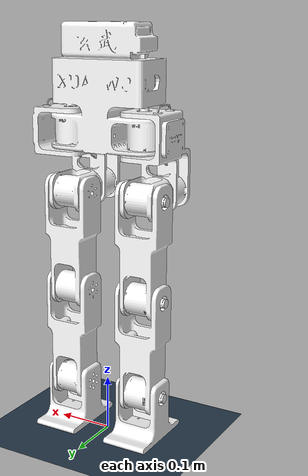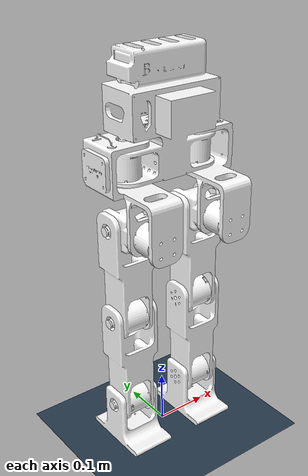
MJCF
<mujoco model="Xuanwu">
  <option>
    <flag multiccd="enable"/>
  </option>
  <compiler angle="radian" meshdir="../meshes/" eulerseq="zyx"/>
  <size njmax="500" nconmax="100" />
  <option timestep="0.001" iterations="50" solver="PGS" gravity="0 0 -9.81" noslip_iterations="20">
  <flag sensornoise="enable" frictionloss="enable"/>
  </option>
  <default>
      <geom contype="1" conaffinity="15" condim="4" solref="0.001 2" friction='0.9 0.2 0.2'/>
  </default>
  <visual>
      <quality shadowsize="4096"/>
      <global realtime="1"/>
  </visual>
  <asset>
    <texture name="texplane" type="2d" builtin="checker" rgb1=".2 .3 .4" rgb2=".1 0.15 0.2" width="512" height="512" mark="cross" markrgb=".8 .8 .8"/>
    <material name="matplane" reflectance="0." texture="texplane" texrepeat="1 1" texuniform="true"/>

    <mesh name="base_link" file="base_link.STL"/>
    <mesh name="link_1" file="link_1.STL"/>
    <mesh name="link_2" file="link_2.STL"/>
    <mesh name="link_3" file="link_3.STL"/>
    <mesh name="link_4" file="link_4.STL"/>
    <mesh name="link_5" file="link_5.STL"/>
    <mesh name="link_6" file="link_6.STL"/>
    <mesh name="link_7" file="link_7.STL"/>
    <mesh name="link_8" file="link_8.STL"/>
    <mesh name="link_9" file="link_9.STL"/>
    <mesh name="link_10" file="link_10.STL"/>
  </asset>

  <worldbody>
    <light directional="true" diffuse=".4 .4 .4" specular="0.1 0.1 0.1" pos="0 0 5.0" dir="0 0 -1" castshadow="false"/>
    <light directional="true" diffuse=".6 .6 .6" specular="0.2 0.2 0.2" pos="0 0 4" dir="0 0 -1"/>
    <geom name="ground" type="plane" size="0 0 1" pos="0.001 0 0" quat="1 0 0 0" material="matplane" condim="1" conaffinity='15'/>

    <body name="base_link" pos="0 0 0.556">
      <freejoint/>
      <site name="imu" pos="0 0 0"/>
      <inertial pos="0.000934 -0.004880 0.069827" mass="2.016243" diaginertia="0.0251293 0.0206152 0.00691741"/>
      <geom type="mesh" contype="0" conaffinity="0" group="1" rgba="1 1 1 1" mesh="base_link"/>
      <geom size="0.08 0.05 0.05" pos="0 0 0.1" type="box" rgba="1 1 1 0" />
      <body name="link_1" pos="-0.073035 -1.4472E-05 -0.00095242" quat="1 0 0 0">
        <inertial pos="-0.006856 -0.062152 -0.076118" mass="0.504" diaginertia="0.00703726 0.0069965 0.000427238"/>
        <joint name="joint_1" pos="0 0 0" axis="0 0 1" range="-0.5 0.5" damping="0.01" frictionloss="0.01" armature="0.01" limited="true"/>
        <geom type="mesh" contype="0" conaffinity="0" group="1" rgba="1 1 1 1" mesh="link_1"/>
        <body name="link_2" pos="4.9294E-05 -0.083183 -0.11003" quat="1 0 0 0">
          <inertial pos="-0.000218 0.076679 0.000024" mass="0.390" diaginertia="0.002479 0.00246102 0.000115979"/>
          <joint name="joint_2" pos="0 0 0" axis="0 1 0" range="-0.7 0.7" damping="0.01" frictionloss="0.01" armature="0.01" limited="true"/>
          <geom type="mesh" contype="0" conaffinity="0" group="1" rgba="1 1 1 1" mesh="link_2"/>
          <body name="link_3" pos="0.00098795 0.082032 2.035E-05" quat="1 0 0 0">
            <inertial pos="-0.000371 -0.000049 -0.144385" mass="0.481" diaginertia="0.011859 0.0117753 0.000262696"/>
            <joint name="joint_3" pos="0 0 0" axis="1 0 0" range="-0.25 1.57" damping="0.01" frictionloss="0.01" armature="0.01" limited="true"/>
            <geom type="mesh" contype="0" conaffinity="0" group="1" rgba="1 1 1 1" mesh="link_3"/>
            <body name="link_4" pos="5E-05 -5.7742E-05 -0.17996" quat="1 0 0 0">
              <inertial pos="-0.000371 0.000032 -0.144426" mass="0.481" diaginertia="0.011865 0.0117813 0.000262697"/>
              <joint name="joint_4" pos="0 0 0" axis="1 0 0" range="-1.57 1.57" damping="0.01" frictionloss="0.01" armature="0.01" limited="true"/>
              <geom type="mesh" contype="0" conaffinity="0" group="1" rgba="1 1 1 1" mesh="link_4"/>
              <body name="link_5" pos="5E-05 3.7392E-05 -0.18" quat="1 0 0 0">
                <inertial pos="0.000400 -0.000014 -0.053536" mass="0.122" diaginertia="0.000567099 0.000555 0.000201901"/>
                <joint name="joint_5" pos="0 0 0" axis="1 0 0" range="-1.57 1.57" damping="0.01" frictionloss="0.01" armature="0.01" limited="true"/>
                <geom type="mesh" contype="1" conaffinity="15" group="1" rgba="1 1 1 1" mesh="link_5"/>
              </body>
            </body>
          </body>
        </body>
      </body>
      <body name="link_6" pos="0.073035 1.4472E-05 -0.00095242" quat="1 0 0 0">
        <inertial pos="0.006873 -0.062180 -0.076118" mass="0.504" diaginertia="0.00703965 0.00699844 0.000425911"/>
        <joint name="joint_6" pos="0 0 0" axis="0 0 1" range="-0.5 0.5" damping="0.01" frictionloss="0.01" armature="0.01" limited="true"/>
        <geom type="mesh" contype="0" conaffinity="0" group="1" rgba="1 1 1 1" mesh="link_6"/>
        <body name="link_7" pos="-2.035E-05 -0.083212 -0.11003" quat="1 0 0 0">
          <inertial pos="0.000189 0.076679 0.000046" mass="0.390" diaginertia="0.002479 0.00246102 0.000115984"/>
          <joint name="joint_7" pos="0 0 0" axis="0 1 0" range="-0.7 0.7" damping="0.01" frictionloss="0.01" armature="0.01" limited="true"/>
          <geom type="mesh" contype="0" conaffinity="0" group="1" rgba="1 1 1 1" mesh="link_7"/>
          <body name="link_8" pos="-0.0010169 0.082032 4.9294E-05" quat="1 0 0 0">
            <inertial pos="0.000371 -0.000021 -0.144414" mass="0.481" diaginertia="0.011863 0.0117793 0.000262698"/>
            <joint name="joint_8" pos="0 0 0" axis="1 0 0" range="-0.25 1.57" damping="0.01" frictionloss="0.01" armature="0.01" limited="true"/>
            <geom type="mesh" contype="0" conaffinity="0" group="1" rgba="1 1 1 1" mesh="link_8"/>
            <body name="link_9" pos="-5E-05 -1.1901E-05 -0.17998" quat="1 0 0 0">
              <inertial pos="0.000371 -0.000001 -0.144439" mass="0.481" diaginertia="0.011867 0.0117833 0.000262698"/>
              <joint name="joint_9" pos="0 0 0" axis="1 0 0" range="-1.57 1.57" damping="0.01" frictionloss="0.01" armature="0.01" limited="true"/>
              <geom type="mesh" contype="0" conaffinity="0" group="1" rgba="1 1 1 1" mesh="link_9"/>
              <body name="link_10" pos="-5E-05 1.1901E-05 -0.18002" quat="1 0 0 0">
                <inertial pos="-0.000400 -0.000035 -0.053516" mass="0.122" diaginertia="0.000566099 0.000554 0.000201901"/>
                <joint name="joint_10" pos="0 0 0" axis="1 0 0" range="-1.57 1.57" damping="0.01" frictionloss="0.01" armature="0.01" limited="true"/>
                <geom type="mesh" contype="1" conaffinity="15" group="1" rgba="1 1 1 1" mesh="link_10"/>
              </body>
            </body>
          </body>
        </body>
      </body>
    </body>
  </worldbody>
  <actuator>
    <motor gear="1" joint="joint_1" name="motor_1" ctrllimited="true"  ctrlrange='-7 7'/>
    <motor gear="1" joint="joint_2" name="motor_2" ctrllimited="true"  ctrlrange='-7 7'/>
    <motor gear="1" joint="joint_3" name="motor_3" ctrllimited="true"  ctrlrange='-7 7'/>
    <motor gear="1" joint="joint_4" name="motor_4" ctrllimited="true"  ctrlrange='-7 7'/>
    <motor gear="1" joint="joint_5" name="motor_5" ctrllimited="true"  ctrlrange='-7 7'/>
    <motor gear="1" joint="joint_6" name="motor_6" ctrllimited="true"  ctrlrange='-7 7'/>
    <motor gear="1" joint="joint_7" name="motor_7" ctrllimited="true"  ctrlrange='-7 7'/>
    <motor gear="1" joint="joint_8" name="motor_8" ctrllimited="true"  ctrlrange='-7 7'/>
    <motor gear="1" joint="joint_9" name="motor_9" ctrllimited="true"  ctrlrange='-7 7'/>
    <motor gear="1" joint="joint_10" name="motor_10" ctrllimited="true"  ctrlrange='-7 7'/>
  </actuator>
  <sensor>
    <actuatorpos name="joint_1_pos" actuator="motor_1"/>
    <actuatorpos name="joint_2_pos" actuator="motor_2"/>
    <actuatorpos name="joint_3_pos" actuator="motor_3"/>
    <actuatorpos name="joint_4_pos" actuator="motor_4"/>
    <actuatorpos name="joint_5_pos" actuator="motor_5"/>
    <actuatorpos name="joint_6_pos" actuator="motor_6"/>
    <actuatorpos name="joint_7_pos" actuator="motor_7"/>
    <actuatorpos name="joint_8_pos" actuator="motor_8"/>
    <actuatorpos name="joint_9_pos" actuator="motor_9"/>
    <actuatorpos name="joint_10_pos" actuator="motor_10"/>

    <actuatorvel name="joint_1_vel" actuator="motor_1"/>
    <actuatorvel name="joint_2_vel" actuator="motor_2"/>
    <actuatorvel name="joint_3_vel" actuator="motor_3"/>
    <actuatorvel name="joint_4_vel" actuator="motor_4"/>
    <actuatorvel name="joint_5_vel" actuator="motor_5"/>
    <actuatorvel name="joint_6_vel" actuator="motor_6"/>
    <actuatorvel name="joint_7_vel" actuator="motor_7"/>
    <actuatorvel name="joint_8_vel" actuator="motor_8"/>
    <actuatorvel name="joint_9_vel" actuator="motor_9"/>
    <actuatorvel name="joint_10_vel" actuator="motor_10"/>

    <actuatorfrc name="joint_1_frc" actuator="motor_1"/>
    <actuatorfrc name="joint_2_frc" actuator="motor_2"/>
    <actuatorfrc name="joint_3_frc" actuator="motor_3"/>
    <actuatorfrc name="joint_4_frc" actuator="motor_4"/>
    <actuatorfrc name="joint_5_frc" actuator="motor_5"/>
    <actuatorfrc name="joint_6_frc" actuator="motor_6"/>
    <actuatorfrc name="joint_7_frc" actuator="motor_7"/>
    <actuatorfrc name="joint_8_frc" actuator="motor_8"/>
    <actuatorfrc name="joint_9_frc" actuator="motor_9"/>
    <actuatorfrc name="joint_10_frc" actuator="motor_10"/>

    <framequat     name='orientation' objtype='site' noise='0.001' objname='imu'/>
    <framepos     name='position' objtype='site' noise='0.001' objname='imu'/>
    <gyro          name='angular-velocity'    site='imu' noise='0.005' cutoff='34.9'/>
    <velocimeter   name='linear-velocity'     site='imu' noise='0.001' cutoff='30'/>
    <accelerometer name='linear-acceleration' site='imu' noise='0.005' cutoff='157'/>
    <magnetometer  name='magnetometer'        site='imu'/>
  </sensor>
</mujoco>
